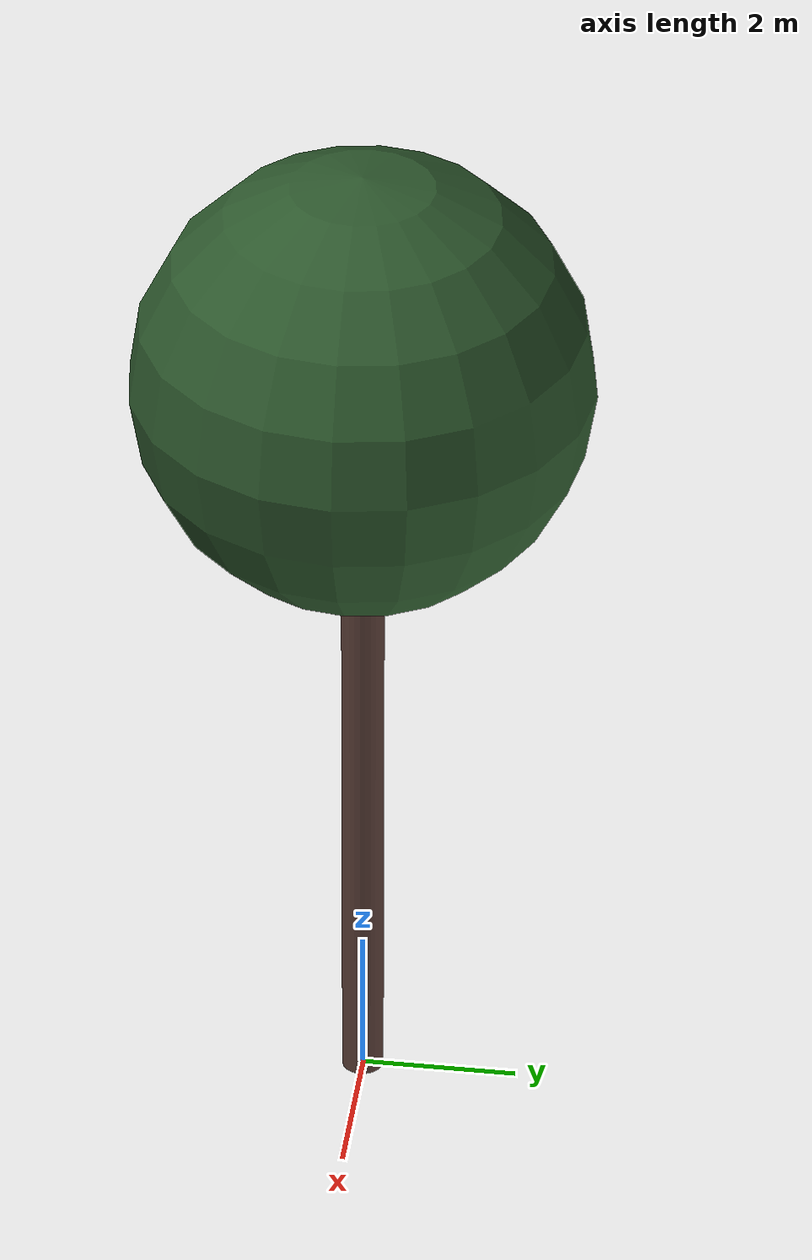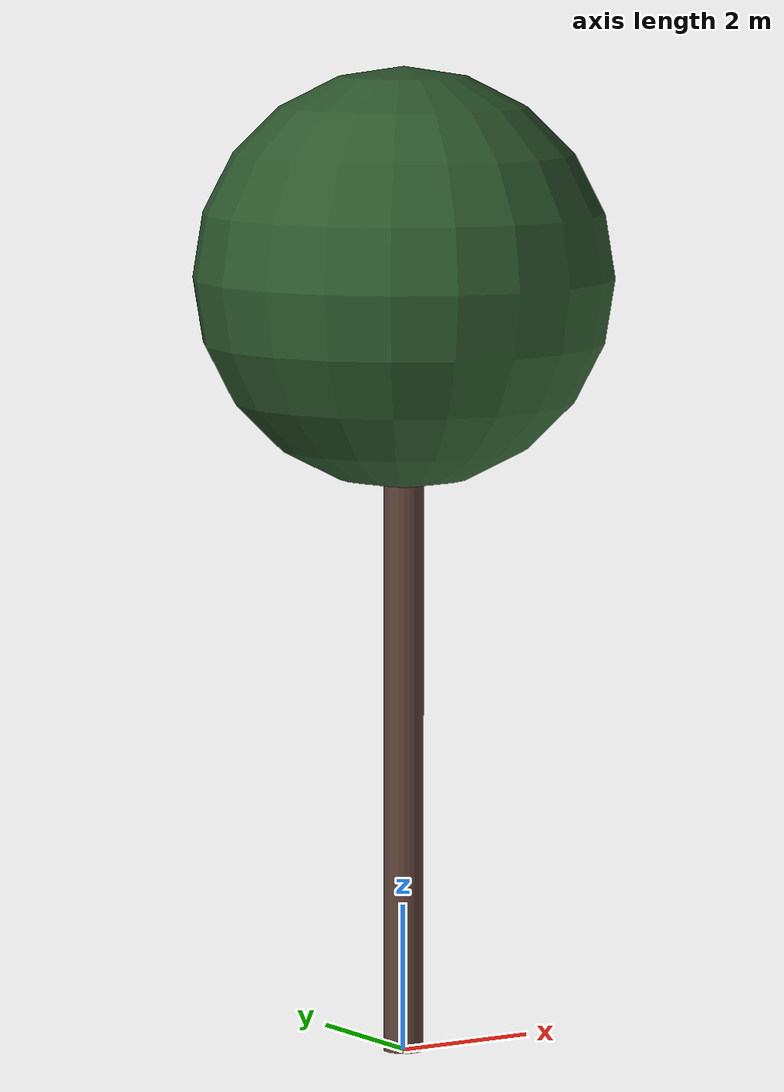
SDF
<?xml version="1.0" ?>
<sdf version="1.10">
  <model name="pin_parasol_09">
    <static>true</static>

    <!-- Tronc -->
    <link name="trunk">
      <pose>0 0 4.844588384981304 0 0 0</pose>
      <visual name="trunk_visual">
        <geometry>
          <cylinder>
            <radius>0.2691077395242446</radius>
            <length>9.689176769962607</length>
          </cylinder>
        </geometry>
        <material>
          <ambient>0.36 0.25 0.22 1</ambient>
          <diffuse>0.36 0.25 0.22 1</diffuse>
          <specular>0.1 0.1 0.1 1</specular>
        </material>
      </visual>
      <collision name="trunk_collision">
        <geometry>
          <cylinder>
            <radius>0.2691077395242446</radius>
            <length>9.689176769962607</length>
          </cylinder>
        </geometry>
      </collision>
    </link>

    <!-- Feuillage -->
    <link name="crown">
      <pose>0 0 10.541114157120143 0 0 0</pose>
      <visual name="crown_visual">
        <geometry>
          <sphere>
              <radius>2.8397912905251195</radius>
            </sphere>
        </geometry>
        <material>
          <ambient>0.18 0.35 0.18 1</ambient>
          <diffuse>0.18 0.35 0.18 1</diffuse>
          <specular>0.1 0.1 0.1 1</specular>
        </material>
      </visual>
      <collision name="crown_collision">
        <geometry>
          <sphere>
            <radius>2.2718330324200955</radius>
          </sphere>
        </geometry>
      </collision>
    </link>

    <!-- Joint tronc-feuillage -->
    <joint name="trunk_crown_joint" type="fixed">
      <parent>trunk</parent>
      <child>crown</child>
    </joint>

  </model>
</sdf>
